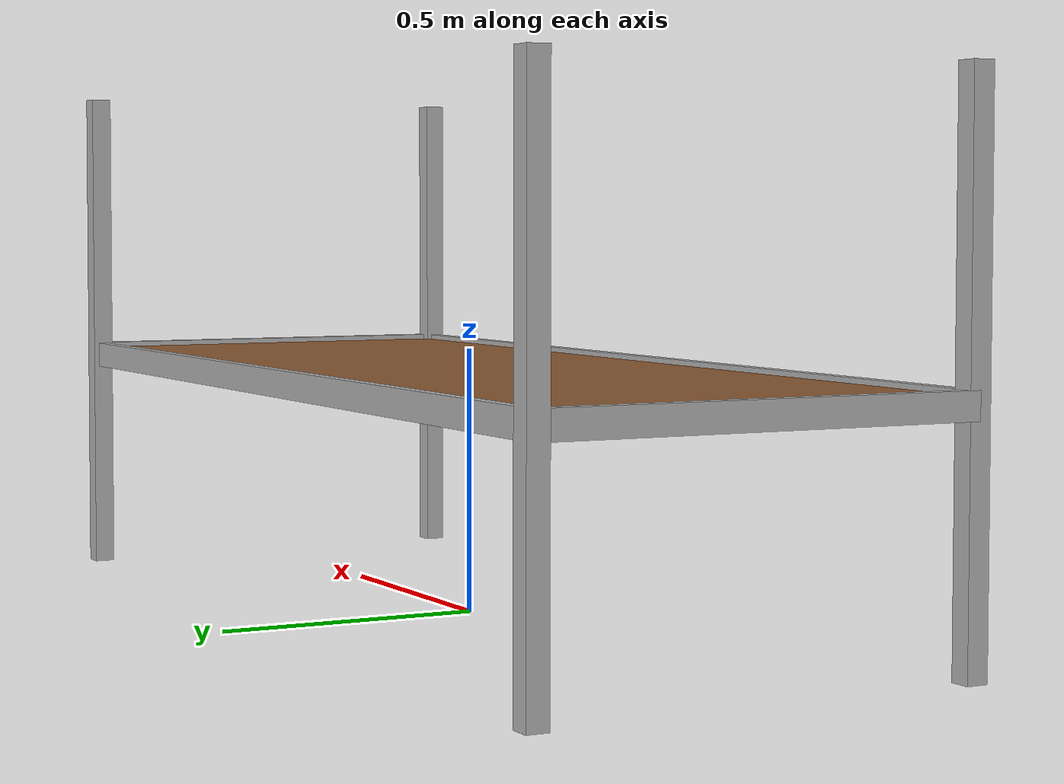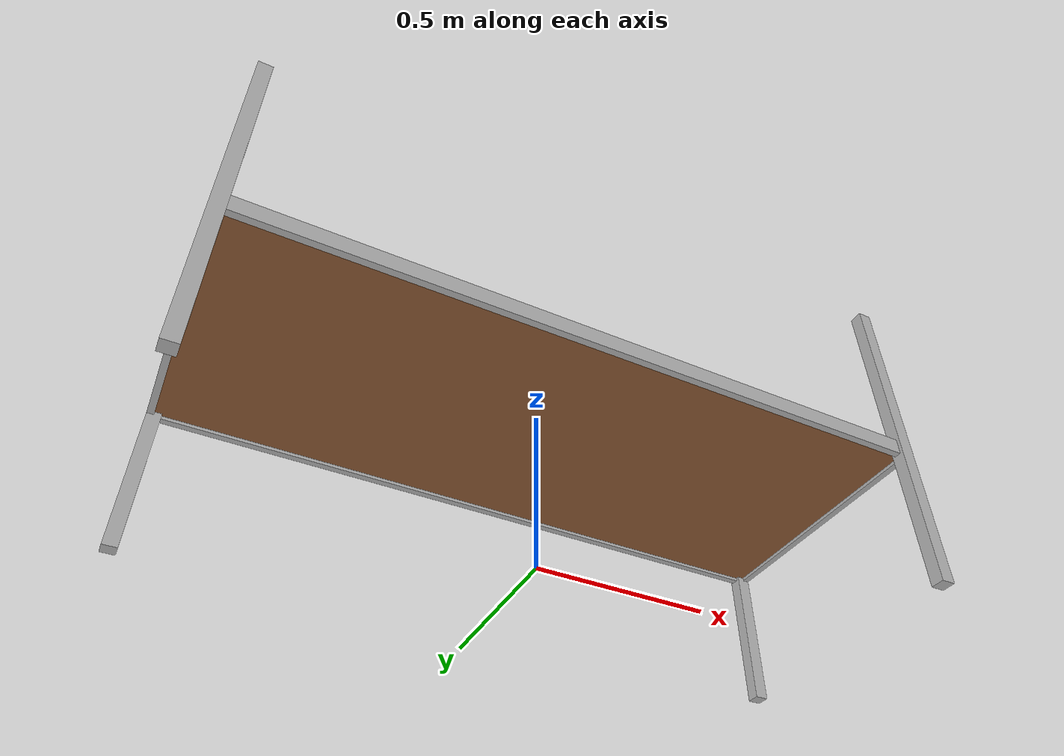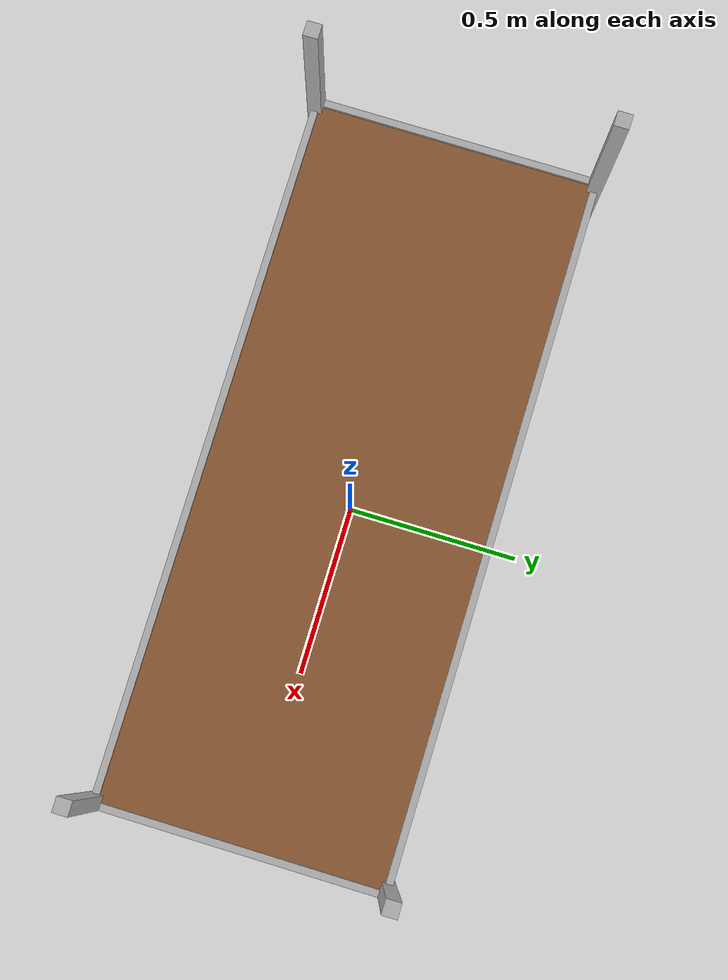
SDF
<?xml version='1.0'?>
<sdf version='1.6'>
  <model name='rack'>
    <link name="surface">
      <inertial>
          <mass>0.1</mass>
          <inertia>
              <ixx>0.00001</ixx>
              <ixy>0.000</ixy>
              <ixz>0.000</ixz>
              <iyy>0.00001</iyy>
              <iyz>0.000</iyz>
              <izz>0.00001</izz>
          </inertia>
      </inertial>
      <visual name='surface_visual'>
        <pose relative_to=''>0 0 0.45 0 0 0</pose>
        <geometry>
          <box>
            <size>2 0.8 0.03</size>
          </box>
        </geometry>
        <material>
          <ambient>0.55 0.35 0.2 1</ambient>
          <diffuse>0.55 0.35 0.2 1</diffuse>
          <specular>0.1 0.1 0.1 1</specular>
          <emissive>0 0 0 1</emissive>
        </material>
        <transparency>0</transparency>
        <cast_shadows>1</cast_shadows>
      </visual>
      <collision name='surface_collision'>
        <pose relative_to=''>0 0 0.45 0 0 0</pose>
        <laser_retro>0</laser_retro>
        <max_contacts>10</max_contacts>
        <geometry>
          <box>
            <size>2 0.82 0.03</size>
          </box>
        </geometry>
        <surface>
          <friction>
            <ode>
              <mu>1000000</mu>
              <mu2>1000000</mu2>
            </ode>
          </friction>
          <bounce>
            <restitution_coefficient>0</restitution_coefficient>
          </bounce>
          <contact>
            <ode>
              <kp>1e13</kp>
              <kd>1</kd>
            </ode>
          </contact>
        </surface>
      </collision>

      <visual name='left_holding_visual'>
        <pose relative_to=''>0 0.4 0.45 0 0 0</pose>
        <geometry>
          <box>
            <size>1.98 0.02 0.05</size>
          </box>
        </geometry>
        <material>
          <ambient>0.3 0.3 0.3 1</ambient>
          <diffuse>0.7 0.7 0.7 1</diffuse>
          <specular>0.01 0.01 0.01 1</specular>
          <emissive>0 0 0 1</emissive>
          <pbr>
            <metal>
              <roughness>0.8</roughness>
              <metalness>0.1</metalness>
            </metal>
          </pbr>
        </material>
        <transparency>0</transparency>
        <cast_shadows>1</cast_shadows>
      </visual>

      <visual name='right_holding_visual'>
        <pose relative_to=''>0 -0.4 0.45 0 0 0</pose>
        <geometry>
          <box>
            <size>1.98 0.02 0.05</size>
          </box>
        </geometry>
        <material>
          <ambient>0.3 0.3 0.3 1</ambient>
          <diffuse>0.7 0.7 0.7 1</diffuse>
          <specular>0.01 0.01 0.01 1</specular>
          <emissive>0 0 0 1</emissive>
          <pbr>
            <metal>
              <roughness>0.8</roughness>
              <metalness>0.1</metalness>
            </metal>
          </pbr>
        </material>
        <transparency>0</transparency>
        <cast_shadows>1</cast_shadows>
      </visual>

      <visual name='front_holding_visual'>
        <pose relative_to=''>1.0 0 0.45 0 0 1.57</pose>
        <geometry>
          <box>
            <size>0.8 0.02 0.05</size>
          </box>
        </geometry>
        <material>
          <ambient>0.3 0.3 0.3 1</ambient>
          <diffuse>0.7 0.7 0.7 1</diffuse>
          <specular>0.01 0.01 0.01 1</specular>
          <emissive>0 0 0 1</emissive>
          <pbr>
            <metal>
              <roughness>0.8</roughness>
              <metalness>0.1</metalness>
            </metal>
          </pbr>
        </material>
        <transparency>0</transparency>
        <cast_shadows>1</cast_shadows>
      </visual>

      <visual name='back_holding_visual'>
        <pose relative_to=''>-1.0 0 0.45 0 0 1.57</pose>
        <geometry>
          <box>
            <size>0.8 0.02 0.05</size>
          </box>
        </geometry>
        <material>
          <ambient>0.3 0.3 0.3 1</ambient>
          <diffuse>0.7 0.7 0.7 1</diffuse>
          <specular>0.01 0.01 0.01 1</specular>
          <emissive>0 0 0 1</emissive>
          <pbr>
            <metal>
              <roughness>0.8</roughness>
              <metalness>0.1</metalness>
            </metal>
          </pbr>
        </material>
        <transparency>0</transparency>
        <cast_shadows>1</cast_shadows>
      </visual>

      <visual name='front_left_leg_visual'>
        <pose relative_to=''>0.99 0.4 0.5 0 0 0</pose>
        <geometry>
          <box>
            <size>0.04 0.04 1.0</size>
          </box>
        </geometry>
        <material>
          <ambient>0.3 0.3 0.3 1</ambient>
          <diffuse>0.7 0.7 0.7 1</diffuse>
          <specular>0.01 0.01 0.01 1</specular>
          <emissive>0 0 0 1</emissive>
          <pbr>
            <metal>
              <roughness>0.8</roughness>
              <metalness>0.1</metalness>
            </metal>
          </pbr>
        </material>
        <cast_shadows>1</cast_shadows>
      </visual>
      <collision name='front_left_leg_collision'>
        <pose relative_to=''>0.99 0.4 0.5 0 0 0</pose>
        <laser_retro>0</laser_retro>
        <max_contacts>10</max_contacts>
        <geometry>
          <box>
            <size>0.04 0.04 1.0</size>
          </box>
        </geometry>
        <surface>
          <friction>
            <ode>
              <mu>0.1</mu>
              <mu2>0.1</mu2>
            </ode>
          </friction>
          <bounce>
            <restitution_coefficient>0</restitution_coefficient>
          </bounce>
          <contact>
            <ode>
              <kp>1e6</kp>
              <kd>1</kd>
            </ode>
          </contact>
        </surface>
      </collision>

      <visual name='front_right_leg_visual'>
        <pose relative_to=''>0.99 -0.4 0.5 0 0 0</pose>
        <geometry>
          <box>
            <size>0.04 0.04 1.0</size>
          </box>
        </geometry>
        <material>
          <ambient>0.3 0.3 0.3 1</ambient>
          <diffuse>0.7 0.7 0.7 1</diffuse>
          <specular>0.01 0.01 0.01 1</specular>
          <emissive>0 0 0 1</emissive>
          <pbr>
            <metal>
              <roughness>0.8</roughness>
              <metalness>0.1</metalness>
            </metal>
          </pbr>
        </material>
        <cast_shadows>1</cast_shadows>
      </visual>
      <collision name='front_right_leg_collision'>
        <pose relative_to=''>0.99 -0.4 0.5 0 0 0</pose>
        <laser_retro>0</laser_retro>
        <max_contacts>10</max_contacts>
        <geometry>
          <box>
            <size>0.04 0.04 1.0</size>
          </box>
        </geometry>
        <surface>
          <friction>
            <ode>
              <mu>0.1</mu>
              <mu2>0.1</mu2>
            </ode>
          </friction>
          <bounce>
            <restitution_coefficient>0</restitution_coefficient>
          </bounce>
          <contact>
            <ode>
              <kp>1e6</kp>
              <kd>1</kd>
            </ode>
          </contact>
        </surface>
      </collision>

      <visual name='back_left_leg_visual'>
        <pose relative_to=''>-0.99 0.4 0.5 0 0 0</pose>
        <geometry>
          <box>
            <size>0.04 0.04 1.0</size>
          </box>
        </geometry>
        <material>
          <ambient>0.3 0.3 0.3 1</ambient>
          <diffuse>0.7 0.7 0.7 1</diffuse>
          <specular>0.01 0.01 0.01 1</specular>
          <emissive>0 0 0 1</emissive>
          <pbr>
            <metal>
              <roughness>0.8</roughness>
              <metalness>0.1</metalness>
            </metal>
          </pbr>
        </material>
        <cast_shadows>1</cast_shadows>
      </visual>
      <collision name='back_left_leg_collision'>
        <pose relative_to=''>-0.99 0.4 0.5 0 0 0</pose>
        <laser_retro>0</laser_retro>
        <max_contacts>10</max_contacts>
        <geometry>
          <box>
            <size>0.04 0.04 1.0</size>
          </box>
        </geometry>
        <surface>
          <friction>
            <ode>
              <mu>0.1</mu>
              <mu2>0.1</mu2>
            </ode>
          </friction>
          <bounce>
            <restitution_coefficient>0</restitution_coefficient>
          </bounce>
          <contact>
            <ode>
              <kp>1e6</kp>
              <kd>1</kd>
            </ode>
          </contact>
        </surface>
      </collision>

      <visual name='back_right_leg_visual'>
        <pose relative_to=''>-0.99 -0.4 0.5 0 0 0</pose>
        <geometry>
          <box>
            <size>0.04 0.04 1.0</size>
          </box>
        </geometry>
        <material>
          <ambient>0.3 0.3 0.3 1</ambient>
          <diffuse>0.7 0.7 0.7 1</diffuse>
          <specular>0.01 0.01 0.01 1</specular>
          <emissive>0 0 0 1</emissive>
          <pbr>
            <metal>
              <roughness>0.8</roughness>
              <metalness>0.1</metalness>
            </metal>
          </pbr>
        </material>
        <cast_shadows>1</cast_shadows>
      </visual>
      <collision name='back_right_leg_collision'>
        <pose relative_to=''>-0.99 -0.4 0.5 0 0 0</pose>
        <laser_retro>0</laser_retro>
        <max_contacts>10</max_contacts>
        <geometry>
          <box>
            <size>0.04 0.04 1.0</size>
          </box>
        </geometry>
        <surface>
          <friction>
            <ode>
              <mu>0.1</mu>
              <mu2>0.1</mu2>
            </ode>
          </friction>
          <bounce>
            <restitution_coefficient>0</restitution_coefficient>
          </bounce>
          <contact>
            <ode>
              <kp>1e6</kp>
              <kd>1</kd>
            </ode>
          </contact>
        </surface>
      </collision>
    </link>

  </model>
</sdf>
